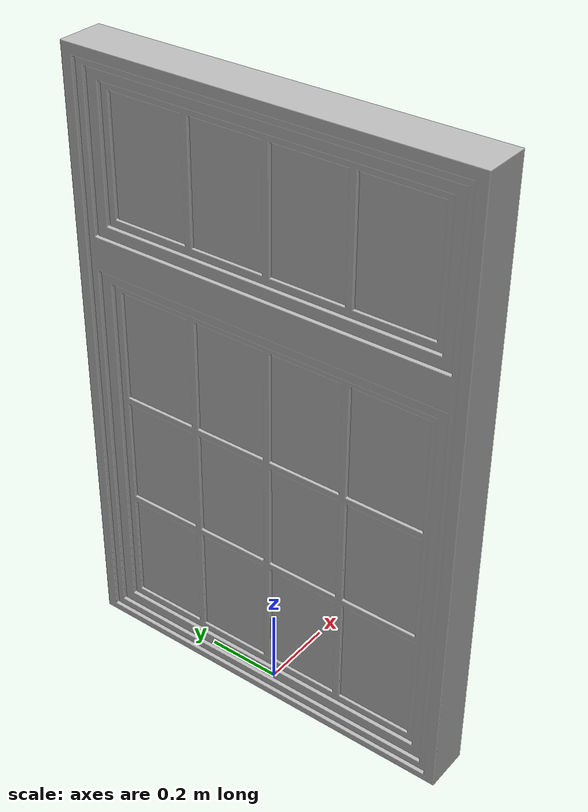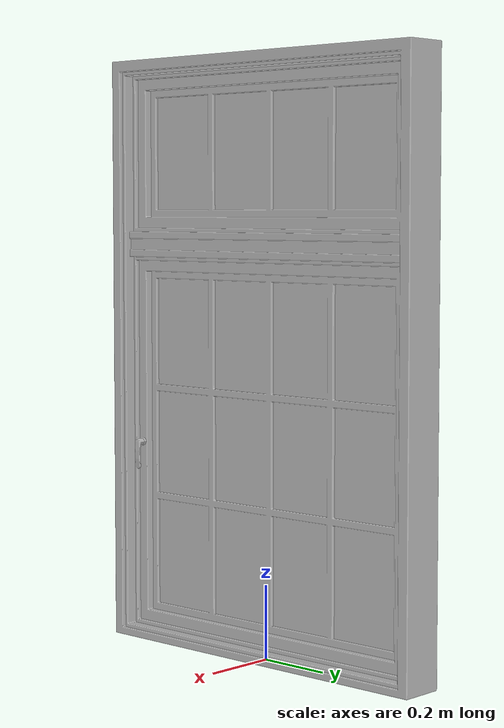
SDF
<?xml version='1.0'?>
<sdf version='1.4'>
  <model name='s__2012'>
    <pose>0 0 0 0 0 0</pose>
    <static>true</static>
    <link name='link'>
      <collision name='collision'>
        <pose>0 0 0 0 0 0</pose>
        <geometry>
          <box>
            <size>0.120003 1.05 2</size>
          </box>
        </geometry>
      </collision>
      <visual name='visual'>
        <pose>0 0 0 0 0 0</pose>
        <geometry>
          <mesh><uri>model://s__2012/s__2012.dae</uri></mesh>
        </geometry>
      </visual>
    </link>
  </model>
</sdf>
